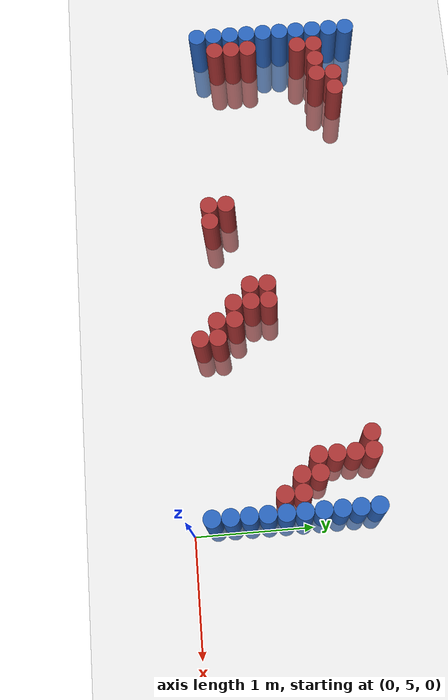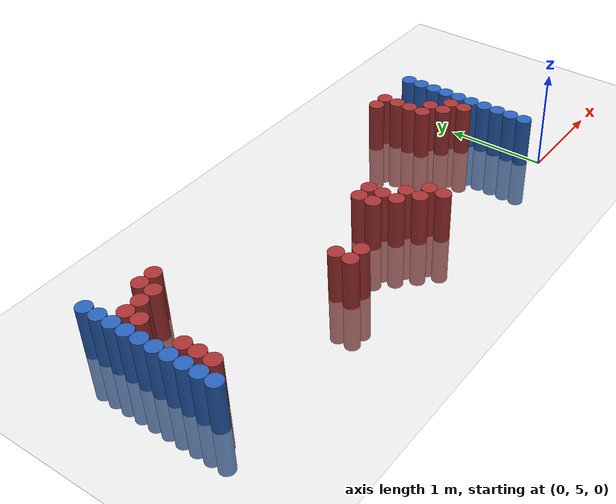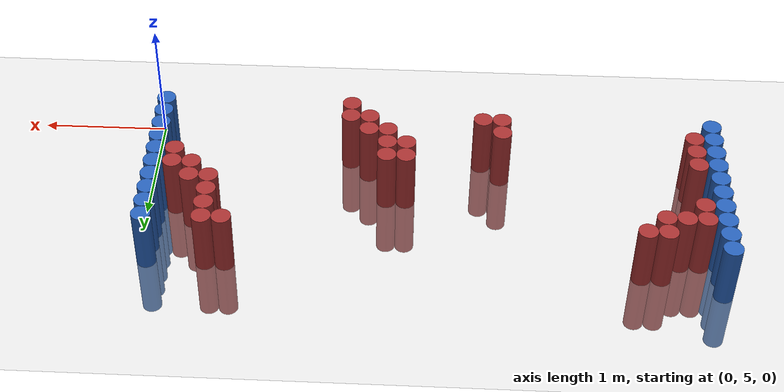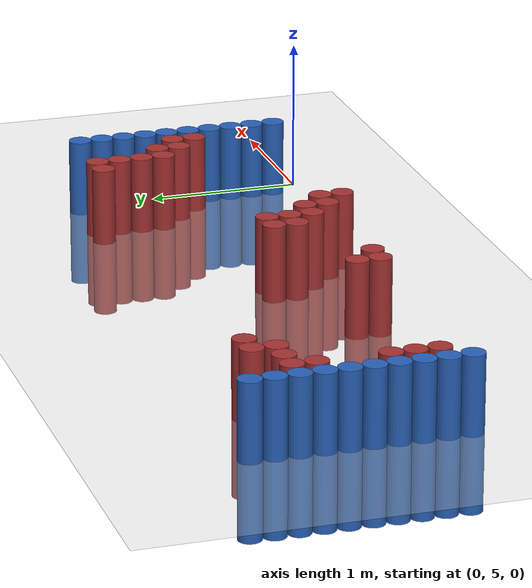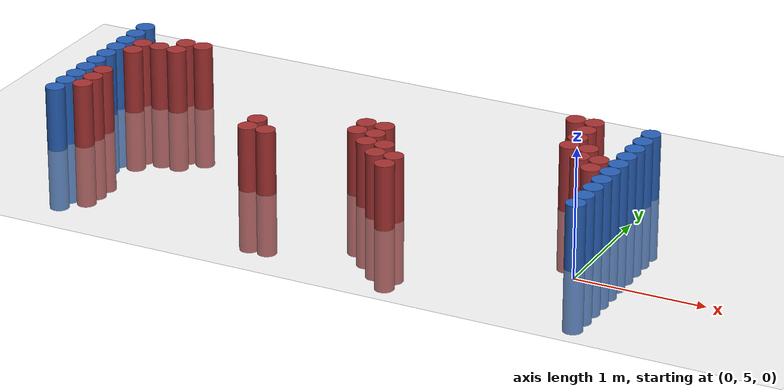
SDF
<sdf version="1.6">
 <world name="default">
  <model name="ground_plane">
   <static>1</static>
   <link name="link">
    <collision name="collision">
     <geometry><plane><normal>0 0 1</normal><size>100 100</size></plane></geometry>
     <surface><friction><ode><mu>100</mu><mu2>50</mu2></ode></friction></surface>
    </collision>
    <visual name="visual">
     <cast_shadows>0</cast_shadows>
     <geometry><plane><normal>0 0 1</normal><size>100 100</size></plane></geometry>
     <material>
      <script><uri>file://media/materials/scripts/gazebo.material</uri><name>Gazebo/Grey</name></script>
     </material>
    </visual>
   </link>
  </model>
  <model name="unit_cylinder_97">
   <static>1</static>
   <pose>-4.425000 5.325000 0.000000 0.000000 0.000000 0.000000</pose>
   <link name="link">
    <inertial>
     <mass>1</mass>
     <inertia><ixx>0.145833</ixx><ixy>0</ixy><ixz>0</ixz><iyy>0.145833</iyy><iyz>0</iyz><izz>0.125</izz></inertia>
    </inertial>
    <collision name="collision">
     <geometry><cylinder><radius>0.075000</radius><length>1</length></cylinder></geometry>
    </collision>
    <visual name="visual">
     <geometry><cylinder><radius>0.075000</radius><length>1</length></cylinder></geometry>
     <material>
      <ambient>0.152000 0.379000 0.720000 1</ambient>
      <diffuse>0.152000 0.379000 0.720000 1</diffuse>
     </material>
     <material>
      <script><name>Gazebo/Grey</name><uri>file://media/materials/scripts/gazebo.material</uri></script>
     </material>
    </visual>
   </link>
  </model>
  <model name="unit_cylinder_98">
   <static>1</static>
   <pose>-4.425000 5.475000 0.000000 0.000000 0.000000 0.000000</pose>
   <link name="link">
    <inertial>
     <mass>1</mass>
     <inertia><ixx>0.145833</ixx><ixy>0</ixy><ixz>0</ixz><iyy>0.145833</iyy><iyz>0</iyz><izz>0.125</izz></inertia>
    </inertial>
    <collision name="collision">
     <geometry><cylinder><radius>0.075000</radius><length>1</length></cylinder></geometry>
    </collision>
    <visual name="visual">
     <geometry><cylinder><radius>0.075000</radius><length>1</length></cylinder></geometry>
     <material>
      <ambient>0.152000 0.379000 0.720000 1</ambient>
      <diffuse>0.152000 0.379000 0.720000 1</diffuse>
     </material>
     <material>
      <script><name>Gazebo/Grey</name><uri>file://media/materials/scripts/gazebo.material</uri></script>
     </material>
    </visual>
   </link>
  </model>
  <model name="unit_cylinder_99">
   <static>1</static>
   <pose>-4.425000 5.625000 0.000000 0.000000 0.000000 0.000000</pose>
   <link name="link">
    <inertial>
     <mass>1</mass>
     <inertia><ixx>0.145833</ixx><ixy>0</ixy><ixz>0</ixz><iyy>0.145833</iyy><iyz>0</iyz><izz>0.125</izz></inertia>
    </inertial>
    <collision name="collision">
     <geometry><cylinder><radius>0.075000</radius><length>1</length></cylinder></geometry>
    </collision>
    <visual name="visual">
     <geometry><cylinder><radius>0.075000</radius><length>1</length></cylinder></geometry>
     <material>
      <ambient>0.152000 0.379000 0.720000 1</ambient>
      <diffuse>0.152000 0.379000 0.720000 1</diffuse>
     </material>
     <material>
      <script><name>Gazebo/Grey</name><uri>file://media/materials/scripts/gazebo.material</uri></script>
     </material>
    </visual>
   </link>
  </model>
  <model name="unit_cylinder_100">
   <static>1</static>
   <pose>-4.425000 5.775000 0.000000 0.000000 0.000000 0.000000</pose>
   <link name="link">
    <inertial>
     <mass>1</mass>
     <inertia><ixx>0.145833</ixx><ixy>0</ixy><ixz>0</ixz><iyy>0.145833</iyy><iyz>0</iyz><izz>0.125</izz></inertia>
    </inertial>
    <collision name="collision">
     <geometry><cylinder><radius>0.075000</radius><length>1</length></cylinder></geometry>
    </collision>
    <visual name="visual">
     <geometry><cylinder><radius>0.075000</radius><length>1</length></cylinder></geometry>
     <material>
      <ambient>0.152000 0.379000 0.720000 1</ambient>
      <diffuse>0.152000 0.379000 0.720000 1</diffuse>
     </material>
     <material>
      <script><name>Gazebo/Grey</name><uri>file://media/materials/scripts/gazebo.material</uri></script>
     </material>
    </visual>
   </link>
  </model>
  <model name="unit_cylinder_101">
   <static>1</static>
   <pose>-4.425000 5.925000 0.000000 0.000000 0.000000 0.000000</pose>
   <link name="link">
    <inertial>
     <mass>1</mass>
     <inertia><ixx>0.145833</ixx><ixy>0</ixy><ixz>0</ixz><iyy>0.145833</iyy><iyz>0</iyz><izz>0.125</izz></inertia>
    </inertial>
    <collision name="collision">
     <geometry><cylinder><radius>0.075000</radius><length>1</length></cylinder></geometry>
    </collision>
    <visual name="visual">
     <geometry><cylinder><radius>0.075000</radius><length>1</length></cylinder></geometry>
     <material>
      <ambient>0.152000 0.379000 0.720000 1</ambient>
      <diffuse>0.152000 0.379000 0.720000 1</diffuse>
     </material>
     <material>
      <script><name>Gazebo/Grey</name><uri>file://media/materials/scripts/gazebo.material</uri></script>
     </material>
    </visual>
   </link>
  </model>
  <model name="unit_cylinder_102">
   <static>1</static>
   <pose>-4.425000 6.075000 0.000000 0.000000 0.000000 0.000000</pose>
   <link name="link">
    <inertial>
     <mass>1</mass>
     <inertia><ixx>0.145833</ixx><ixy>0</ixy><ixz>0</ixz><iyy>0.145833</iyy><iyz>0</iyz><izz>0.125</izz></inertia>
    </inertial>
    <collision name="collision">
     <geometry><cylinder><radius>0.075000</radius><length>1</length></cylinder></geometry>
    </collision>
    <visual name="visual">
     <geometry><cylinder><radius>0.075000</radius><length>1</length></cylinder></geometry>
     <material>
      <ambient>0.152000 0.379000 0.720000 1</ambient>
      <diffuse>0.152000 0.379000 0.720000 1</diffuse>
     </material>
     <material>
      <script><name>Gazebo/Grey</name><uri>file://media/materials/scripts/gazebo.material</uri></script>
     </material>
    </visual>
   </link>
  </model>
  <model name="unit_cylinder_103">
   <static>1</static>
   <pose>-4.425000 6.225000 0.000000 0.000000 0.000000 0.000000</pose>
   <link name="link">
    <inertial>
     <mass>1</mass>
     <inertia><ixx>0.145833</ixx><ixy>0</ixy><ixz>0</ixz><iyy>0.145833</iyy><iyz>0</iyz><izz>0.125</izz></inertia>
    </inertial>
    <collision name="collision">
     <geometry><cylinder><radius>0.075000</radius><length>1</length></cylinder></geometry>
    </collision>
    <visual name="visual">
     <geometry><cylinder><radius>0.075000</radius><length>1</length></cylinder></geometry>
     <material>
      <ambient>0.152000 0.379000 0.720000 1</ambient>
      <diffuse>0.152000 0.379000 0.720000 1</diffuse>
     </material>
     <material>
      <script><name>Gazebo/Grey</name><uri>file://media/materials/scripts/gazebo.material</uri></script>
     </material>
    </visual>
   </link>
  </model>
  <model name="unit_cylinder_104">
   <static>1</static>
   <pose>-4.425000 6.375000 0.000000 0.000000 0.000000 0.000000</pose>
   <link name="link">
    <inertial>
     <mass>1</mass>
     <inertia><ixx>0.145833</ixx><ixy>0</ixy><ixz>0</ixz><iyy>0.145833</iyy><iyz>0</iyz><izz>0.125</izz></inertia>
    </inertial>
    <collision name="collision">
     <geometry><cylinder><radius>0.075000</radius><length>1</length></cylinder></geometry>
    </collision>
    <visual name="visual">
     <geometry><cylinder><radius>0.075000</radius><length>1</length></cylinder></geometry>
     <material>
      <ambient>0.152000 0.379000 0.720000 1</ambient>
      <diffuse>0.152000 0.379000 0.720000 1</diffuse>
     </material>
     <material>
      <script><name>Gazebo/Grey</name><uri>file://media/materials/scripts/gazebo.material</uri></script>
     </material>
    </visual>
   </link>
  </model>
  <model name="unit_cylinder_105">
   <static>1</static>
   <pose>-4.425000 6.525000 0.000000 0.000000 0.000000 0.000000</pose>
   <link name="link">
    <inertial>
     <mass>1</mass>
     <inertia><ixx>0.145833</ixx><ixy>0</ixy><ixz>0</ixz><iyy>0.145833</iyy><iyz>0</iyz><izz>0.125</izz></inertia>
    </inertial>
    <collision name="collision">
     <geometry><cylinder><radius>0.075000</radius><length>1</length></cylinder></geometry>
    </collision>
    <visual name="visual">
     <geometry><cylinder><radius>0.075000</radius><length>1</length></cylinder></geometry>
     <material>
      <ambient>0.152000 0.379000 0.720000 1</ambient>
      <diffuse>0.152000 0.379000 0.720000 1</diffuse>
     </material>
     <material>
      <script><name>Gazebo/Grey</name><uri>file://media/materials/scripts/gazebo.material</uri></script>
     </material>
    </visual>
   </link>
  </model>
  <model name="unit_cylinder_106">
   <static>1</static>
   <pose>-4.425000 6.675000 0.000000 0.000000 0.000000 0.000000</pose>
   <link name="link">
    <inertial>
     <mass>1</mass>
     <inertia><ixx>0.145833</ixx><ixy>0</ixy><ixz>0</ixz><iyy>0.145833</iyy><iyz>0</iyz><izz>0.125</izz></inertia>
    </inertial>
    <collision name="collision">
     <geometry><cylinder><radius>0.075000</radius><length>1</length></cylinder></geometry>
    </collision>
    <visual name="visual">
     <geometry><cylinder><radius>0.075000</radius><length>1</length></cylinder></geometry>
     <material>
      <ambient>0.152000 0.379000 0.720000 1</ambient>
      <diffuse>0.152000 0.379000 0.720000 1</diffuse>
     </material>
     <material>
      <script><name>Gazebo/Grey</name><uri>file://media/materials/scripts/gazebo.material</uri></script>
     </material>
    </visual>
   </link>
  </model>
  <model name="unit_cylinder_126">
   <static>1</static>
   <pose>-4.275000 5.475000 0.000000 0.000000 0.000000 0.000000</pose>
   <link name="link">
    <inertial>
     <mass>1</mass>
     <inertia><ixx>0.145833</ixx><ixy>0</ixy><ixz>0</ixz><iyy>0.145833</iyy><iyz>0</iyz><izz>0.125</izz></inertia>
    </inertial>
    <collision name="collision">
     <geometry><cylinder><radius>0.075000</radius><length>1</length></cylinder></geometry>
    </collision>
    <visual name="visual">
     <geometry><cylinder><radius>0.075000</radius><length>1</length></cylinder></geometry>
     <material>
      <ambient>0.648000 0.192000 0.192000 1</ambient>
      <diffuse>0.648000 0.192000 0.192000 1</diffuse>
     </material>
     <material>
      <script><name>Gazebo/Grey</name><uri>file://media/materials/scripts/gazebo.material</uri></script>
     </material>
    </visual>
   </link>
  </model>
  <model name="unit_cylinder_127">
   <static>1</static>
   <pose>-4.275000 5.625000 0.000000 0.000000 0.000000 0.000000</pose>
   <link name="link">
    <inertial>
     <mass>1</mass>
     <inertia><ixx>0.145833</ixx><ixy>0</ixy><ixz>0</ixz><iyy>0.145833</iyy><iyz>0</iyz><izz>0.125</izz></inertia>
    </inertial>
    <collision name="collision">
     <geometry><cylinder><radius>0.075000</radius><length>1</length></cylinder></geometry>
    </collision>
    <visual name="visual">
     <geometry><cylinder><radius>0.075000</radius><length>1</length></cylinder></geometry>
     <material>
      <ambient>0.648000 0.192000 0.192000 1</ambient>
      <diffuse>0.648000 0.192000 0.192000 1</diffuse>
     </material>
     <material>
      <script><name>Gazebo/Grey</name><uri>file://media/materials/scripts/gazebo.material</uri></script>
     </material>
    </visual>
   </link>
  </model>
  <model name="unit_cylinder_128">
   <static>1</static>
   <pose>-4.275000 5.775000 0.000000 0.000000 0.000000 0.000000</pose>
   <link name="link">
    <inertial>
     <mass>1</mass>
     <inertia><ixx>0.145833</ixx><ixy>0</ixy><ixz>0</ixz><iyy>0.145833</iyy><iyz>0</iyz><izz>0.125</izz></inertia>
    </inertial>
    <collision name="collision">
     <geometry><cylinder><radius>0.075000</radius><length>1</length></cylinder></geometry>
    </collision>
    <visual name="visual">
     <geometry><cylinder><radius>0.075000</radius><length>1</length></cylinder></geometry>
     <material>
      <ambient>0.648000 0.192000 0.192000 1</ambient>
      <diffuse>0.648000 0.192000 0.192000 1</diffuse>
     </material>
     <material>
      <script><name>Gazebo/Grey</name><uri>file://media/materials/scripts/gazebo.material</uri></script>
     </material>
    </visual>
   </link>
  </model>
  <model name="unit_cylinder_129">
   <static>1</static>
   <pose>-4.275000 6.225000 0.000000 0.000000 0.000000 0.000000</pose>
   <link name="link">
    <inertial>
     <mass>1</mass>
     <inertia><ixx>0.145833</ixx><ixy>0</ixy><ixz>0</ixz><iyy>0.145833</iyy><iyz>0</iyz><izz>0.125</izz></inertia>
    </inertial>
    <collision name="collision">
     <geometry><cylinder><radius>0.075000</radius><length>1</length></cylinder></geometry>
    </collision>
    <visual name="visual">
     <geometry><cylinder><radius>0.075000</radius><length>1</length></cylinder></geometry>
     <material>
      <ambient>0.648000 0.192000 0.192000 1</ambient>
      <diffuse>0.648000 0.192000 0.192000 1</diffuse>
     </material>
     <material>
      <script><name>Gazebo/Grey</name><uri>file://media/materials/scripts/gazebo.material</uri></script>
     </material>
    </visual>
   </link>
  </model>
  <model name="unit_cylinder_130">
   <static>1</static>
   <pose>-4.275000 6.375000 0.000000 0.000000 0.000000 0.000000</pose>
   <link name="link">
    <inertial>
     <mass>1</mass>
     <inertia><ixx>0.145833</ixx><ixy>0</ixy><ixz>0</ixz><iyy>0.145833</iyy><iyz>0</iyz><izz>0.125</izz></inertia>
    </inertial>
    <collision name="collision">
     <geometry><cylinder><radius>0.075000</radius><length>1</length></cylinder></geometry>
    </collision>
    <visual name="visual">
     <geometry><cylinder><radius>0.075000</radius><length>1</length></cylinder></geometry>
     <material>
      <ambient>0.648000 0.192000 0.192000 1</ambient>
      <diffuse>0.648000 0.192000 0.192000 1</diffuse>
     </material>
     <material>
      <script><name>Gazebo/Grey</name><uri>file://media/materials/scripts/gazebo.material</uri></script>
     </material>
    </visual>
   </link>
  </model>
  <model name="unit_cylinder_146">
   <static>1</static>
   <pose>-4.125000 6.375000 0.000000 0.000000 0.000000 0.000000</pose>
   <link name="link">
    <inertial>
     <mass>1</mass>
     <inertia><ixx>0.145833</ixx><ixy>0</ixy><ixz>0</ixz><iyy>0.145833</iyy><iyz>0</iyz><izz>0.125</izz></inertia>
    </inertial>
    <collision name="collision">
     <geometry><cylinder><radius>0.075000</radius><length>1</length></cylinder></geometry>
    </collision>
    <visual name="visual">
     <geometry><cylinder><radius>0.075000</radius><length>1</length></cylinder></geometry>
     <material>
      <ambient>0.648000 0.192000 0.192000 1</ambient>
      <diffuse>0.648000 0.192000 0.192000 1</diffuse>
     </material>
     <material>
      <script><name>Gazebo/Grey</name><uri>file://media/materials/scripts/gazebo.material</uri></script>
     </material>
    </visual>
   </link>
  </model>
  <model name="unit_cylinder_154">
   <static>1</static>
   <pose>-3.975000 6.375000 0.000000 0.000000 0.000000 0.000000</pose>
   <link name="link">
    <inertial>
     <mass>1</mass>
     <inertia><ixx>0.145833</ixx><ixy>0</ixy><ixz>0</ixz><iyy>0.145833</iyy><iyz>0</iyz><izz>0.125</izz></inertia>
    </inertial>
    <collision name="collision">
     <geometry><cylinder><radius>0.075000</radius><length>1</length></cylinder></geometry>
    </collision>
    <visual name="visual">
     <geometry><cylinder><radius>0.075000</radius><length>1</length></cylinder></geometry>
     <material>
      <ambient>0.648000 0.192000 0.192000 1</ambient>
      <diffuse>0.648000 0.192000 0.192000 1</diffuse>
     </material>
     <material>
      <script><name>Gazebo/Grey</name><uri>file://media/materials/scripts/gazebo.material</uri></script>
     </material>
    </visual>
   </link>
  </model>
  <model name="unit_cylinder_155">
   <static>1</static>
   <pose>-3.975000 6.525000 0.000000 0.000000 0.000000 0.000000</pose>
   <link name="link">
    <inertial>
     <mass>1</mass>
     <inertia><ixx>0.145833</ixx><ixy>0</ixy><ixz>0</ixz><iyy>0.145833</iyy><iyz>0</iyz><izz>0.125</izz></inertia>
    </inertial>
    <collision name="collision">
     <geometry><cylinder><radius>0.075000</radius><length>1</length></cylinder></geometry>
    </collision>
    <visual name="visual">
     <geometry><cylinder><radius>0.075000</radius><length>1</length></cylinder></geometry>
     <material>
      <ambient>0.648000 0.192000 0.192000 1</ambient>
      <diffuse>0.648000 0.192000 0.192000 1</diffuse>
     </material>
     <material>
      <script><name>Gazebo/Grey</name><uri>file://media/materials/scripts/gazebo.material</uri></script>
     </material>
    </visual>
   </link>
  </model>
  <model name="unit_cylinder_158">
   <static>1</static>
   <pose>-3.825000 6.525000 0.000000 0.000000 0.000000 0.000000</pose>
   <link name="link">
    <inertial>
     <mass>1</mass>
     <inertia><ixx>0.145833</ixx><ixy>0</ixy><ixz>0</ixz><iyy>0.145833</iyy><iyz>0</iyz><izz>0.125</izz></inertia>
    </inertial>
    <collision name="collision">
     <geometry><cylinder><radius>0.075000</radius><length>1</length></cylinder></geometry>
    </collision>
    <visual name="visual">
     <geometry><cylinder><radius>0.075000</radius><length>1</length></cylinder></geometry>
     <material>
      <ambient>0.648000 0.192000 0.192000 1</ambient>
      <diffuse>0.648000 0.192000 0.192000 1</diffuse>
     </material>
     <material>
      <script><name>Gazebo/Grey</name><uri>file://media/materials/scripts/gazebo.material</uri></script>
     </material>
    </visual>
   </link>
  </model>
  <model name="unit_cylinder_198">
   <static>1</static>
   <pose>-2.775000 5.325000 0.000000 0.000000 0.000000 0.000000</pose>
   <link name="link">
    <inertial>
     <mass>1</mass>
     <inertia><ixx>0.145833</ixx><ixy>0</ixy><ixz>0</ixz><iyy>0.145833</iyy><iyz>0</iyz><izz>0.125</izz></inertia>
    </inertial>
    <collision name="collision">
     <geometry><cylinder><radius>0.075000</radius><length>1</length></cylinder></geometry>
    </collision>
    <visual name="visual">
     <geometry><cylinder><radius>0.075000</radius><length>1</length></cylinder></geometry>
     <material>
      <ambient>0.648000 0.192000 0.192000 1</ambient>
      <diffuse>0.648000 0.192000 0.192000 1</diffuse>
     </material>
     <material>
      <script><name>Gazebo/Grey</name><uri>file://media/materials/scripts/gazebo.material</uri></script>
     </material>
    </visual>
   </link>
  </model>
  <model name="unit_cylinder_199">
   <static>1</static>
   <pose>-2.775000 5.475000 0.000000 0.000000 0.000000 0.000000</pose>
   <link name="link">
    <inertial>
     <mass>1</mass>
     <inertia><ixx>0.145833</ixx><ixy>0</ixy><ixz>0</ixz><iyy>0.145833</iyy><iyz>0</iyz><izz>0.125</izz></inertia>
    </inertial>
    <collision name="collision">
     <geometry><cylinder><radius>0.075000</radius><length>1</length></cylinder></geometry>
    </collision>
    <visual name="visual">
     <geometry><cylinder><radius>0.075000</radius><length>1</length></cylinder></geometry>
     <material>
      <ambient>0.648000 0.192000 0.192000 1</ambient>
      <diffuse>0.648000 0.192000 0.192000 1</diffuse>
     </material>
     <material>
      <script><name>Gazebo/Grey</name><uri>file://media/materials/scripts/gazebo.material</uri></script>
     </material>
    </visual>
   </link>
  </model>
  <model name="unit_cylinder_208">
   <static>1</static>
   <pose>-2.625000 5.325000 0.000000 0.000000 0.000000 0.000000</pose>
   <link name="link">
    <inertial>
     <mass>1</mass>
     <inertia><ixx>0.145833</ixx><ixy>0</ixy><ixz>0</ixz><iyy>0.145833</iyy><iyz>0</iyz><izz>0.125</izz></inertia>
    </inertial>
    <collision name="collision">
     <geometry><cylinder><radius>0.075000</radius><length>1</length></cylinder></geometry>
    </collision>
    <visual name="visual">
     <geometry><cylinder><radius>0.075000</radius><length>1</length></cylinder></geometry>
     <material>
      <ambient>0.648000 0.192000 0.192000 1</ambient>
      <diffuse>0.648000 0.192000 0.192000 1</diffuse>
     </material>
     <material>
      <script><name>Gazebo/Grey</name><uri>file://media/materials/scripts/gazebo.material</uri></script>
     </material>
    </visual>
   </link>
  </model>
  <model name="unit_cylinder_222">
   <static>1</static>
   <pose>-2.025000 5.625000 0.000000 0.000000 0.000000 0.000000</pose>
   <link name="link">
    <inertial>
     <mass>1</mass>
     <inertia><ixx>0.145833</ixx><ixy>0</ixy><ixz>0</ixz><iyy>0.145833</iyy><iyz>0</iyz><izz>0.125</izz></inertia>
    </inertial>
    <collision name="collision">
     <geometry><cylinder><radius>0.075000</radius><length>1</length></cylinder></geometry>
    </collision>
    <visual name="visual">
     <geometry><cylinder><radius>0.075000</radius><length>1</length></cylinder></geometry>
     <material>
      <ambient>0.648000 0.192000 0.192000 1</ambient>
      <diffuse>0.648000 0.192000 0.192000 1</diffuse>
     </material>
     <material>
      <script><name>Gazebo/Grey</name><uri>file://media/materials/scripts/gazebo.material</uri></script>
     </material>
    </visual>
   </link>
  </model>
  <model name="unit_cylinder_223">
   <static>1</static>
   <pose>-2.025000 5.775000 0.000000 0.000000 0.000000 0.000000</pose>
   <link name="link">
    <inertial>
     <mass>1</mass>
     <inertia><ixx>0.145833</ixx><ixy>0</ixy><ixz>0</ixz><iyy>0.145833</iyy><iyz>0</iyz><izz>0.125</izz></inertia>
    </inertial>
    <collision name="collision">
     <geometry><cylinder><radius>0.075000</radius><length>1</length></cylinder></geometry>
    </collision>
    <visual name="visual">
     <geometry><cylinder><radius>0.075000</radius><length>1</length></cylinder></geometry>
     <material>
      <ambient>0.648000 0.192000 0.192000 1</ambient>
      <diffuse>0.648000 0.192000 0.192000 1</diffuse>
     </material>
     <material>
      <script><name>Gazebo/Grey</name><uri>file://media/materials/scripts/gazebo.material</uri></script>
     </material>
    </visual>
   </link>
  </model>
  <model name="unit_cylinder_226">
   <static>1</static>
   <pose>-1.875000 5.475000 0.000000 0.000000 0.000000 0.000000</pose>
   <link name="link">
    <inertial>
     <mass>1</mass>
     <inertia><ixx>0.145833</ixx><ixy>0</ixy><ixz>0</ixz><iyy>0.145833</iyy><iyz>0</iyz><izz>0.125</izz></inertia>
    </inertial>
    <collision name="collision">
     <geometry><cylinder><radius>0.075000</radius><length>1</length></cylinder></geometry>
    </collision>
    <visual name="visual">
     <geometry><cylinder><radius>0.075000</radius><length>1</length></cylinder></geometry>
     <material>
      <ambient>0.648000 0.192000 0.192000 1</ambient>
      <diffuse>0.648000 0.192000 0.192000 1</diffuse>
     </material>
     <material>
      <script><name>Gazebo/Grey</name><uri>file://media/materials/scripts/gazebo.material</uri></script>
     </material>
    </visual>
   </link>
  </model>
  <model name="unit_cylinder_227">
   <static>1</static>
   <pose>-1.875000 5.625000 0.000000 0.000000 0.000000 0.000000</pose>
   <link name="link">
    <inertial>
     <mass>1</mass>
     <inertia><ixx>0.145833</ixx><ixy>0</ixy><ixz>0</ixz><iyy>0.145833</iyy><iyz>0</iyz><izz>0.125</izz></inertia>
    </inertial>
    <collision name="collision">
     <geometry><cylinder><radius>0.075000</radius><length>1</length></cylinder></geometry>
    </collision>
    <visual name="visual">
     <geometry><cylinder><radius>0.075000</radius><length>1</length></cylinder></geometry>
     <material>
      <ambient>0.648000 0.192000 0.192000 1</ambient>
      <diffuse>0.648000 0.192000 0.192000 1</diffuse>
     </material>
     <material>
      <script><name>Gazebo/Grey</name><uri>file://media/materials/scripts/gazebo.material</uri></script>
     </material>
    </visual>
   </link>
  </model>
  <model name="unit_cylinder_228">
   <static>1</static>
   <pose>-1.875000 5.775000 0.000000 0.000000 0.000000 0.000000</pose>
   <link name="link">
    <inertial>
     <mass>1</mass>
     <inertia><ixx>0.145833</ixx><ixy>0</ixy><ixz>0</ixz><iyy>0.145833</iyy><iyz>0</iyz><izz>0.125</izz></inertia>
    </inertial>
    <collision name="collision">
     <geometry><cylinder><radius>0.075000</radius><length>1</length></cylinder></geometry>
    </collision>
    <visual name="visual">
     <geometry><cylinder><radius>0.075000</radius><length>1</length></cylinder></geometry>
     <material>
      <ambient>0.648000 0.192000 0.192000 1</ambient>
      <diffuse>0.648000 0.192000 0.192000 1</diffuse>
     </material>
     <material>
      <script><name>Gazebo/Grey</name><uri>file://media/materials/scripts/gazebo.material</uri></script>
     </material>
    </visual>
   </link>
  </model>
  <model name="unit_cylinder_230">
   <static>1</static>
   <pose>-1.725000 5.325000 0.000000 0.000000 0.000000 0.000000</pose>
   <link name="link">
    <inertial>
     <mass>1</mass>
     <inertia><ixx>0.145833</ixx><ixy>0</ixy><ixz>0</ixz><iyy>0.145833</iyy><iyz>0</iyz><izz>0.125</izz></inertia>
    </inertial>
    <collision name="collision">
     <geometry><cylinder><radius>0.075000</radius><length>1</length></cylinder></geometry>
    </collision>
    <visual name="visual">
     <geometry><cylinder><radius>0.075000</radius><length>1</length></cylinder></geometry>
     <material>
      <ambient>0.648000 0.192000 0.192000 1</ambient>
      <diffuse>0.648000 0.192000 0.192000 1</diffuse>
     </material>
     <material>
      <script><name>Gazebo/Grey</name><uri>file://media/materials/scripts/gazebo.material</uri></script>
     </material>
    </visual>
   </link>
  </model>
  <model name="unit_cylinder_231">
   <static>1</static>
   <pose>-1.725000 5.475000 0.000000 0.000000 0.000000 0.000000</pose>
   <link name="link">
    <inertial>
     <mass>1</mass>
     <inertia><ixx>0.145833</ixx><ixy>0</ixy><ixz>0</ixz><iyy>0.145833</iyy><iyz>0</iyz><izz>0.125</izz></inertia>
    </inertial>
    <collision name="collision">
     <geometry><cylinder><radius>0.075000</radius><length>1</length></cylinder></geometry>
    </collision>
    <visual name="visual">
     <geometry><cylinder><radius>0.075000</radius><length>1</length></cylinder></geometry>
     <material>
      <ambient>0.648000 0.192000 0.192000 1</ambient>
      <diffuse>0.648000 0.192000 0.192000 1</diffuse>
     </material>
     <material>
      <script><name>Gazebo/Grey</name><uri>file://media/materials/scripts/gazebo.material</uri></script>
     </material>
    </visual>
   </link>
  </model>
  <model name="unit_cylinder_234">
   <static>1</static>
   <pose>-1.575000 5.175000 0.000000 0.000000 0.000000 0.000000</pose>
   <link name="link">
    <inertial>
     <mass>1</mass>
     <inertia><ixx>0.145833</ixx><ixy>0</ixy><ixz>0</ixz><iyy>0.145833</iyy><iyz>0</iyz><izz>0.125</izz></inertia>
    </inertial>
    <collision name="collision">
     <geometry><cylinder><radius>0.075000</radius><length>1</length></cylinder></geometry>
    </collision>
    <visual name="visual">
     <geometry><cylinder><radius>0.075000</radius><length>1</length></cylinder></geometry>
     <material>
      <ambient>0.648000 0.192000 0.192000 1</ambient>
      <diffuse>0.648000 0.192000 0.192000 1</diffuse>
     </material>
     <material>
      <script><name>Gazebo/Grey</name><uri>file://media/materials/scripts/gazebo.material</uri></script>
     </material>
    </visual>
   </link>
  </model>
  <model name="unit_cylinder_235">
   <static>1</static>
   <pose>-1.575000 5.325000 0.000000 0.000000 0.000000 0.000000</pose>
   <link name="link">
    <inertial>
     <mass>1</mass>
     <inertia><ixx>0.145833</ixx><ixy>0</ixy><ixz>0</ixz><iyy>0.145833</iyy><iyz>0</iyz><izz>0.125</izz></inertia>
    </inertial>
    <collision name="collision">
     <geometry><cylinder><radius>0.075000</radius><length>1</length></cylinder></geometry>
    </collision>
    <visual name="visual">
     <geometry><cylinder><radius>0.075000</radius><length>1</length></cylinder></geometry>
     <material>
      <ambient>0.648000 0.192000 0.192000 1</ambient>
      <diffuse>0.648000 0.192000 0.192000 1</diffuse>
     </material>
     <material>
      <script><name>Gazebo/Grey</name><uri>file://media/materials/scripts/gazebo.material</uri></script>
     </material>
    </visual>
   </link>
  </model>
  <model name="unit_cylinder_242">
   <static>1</static>
   <pose>-0.675000 6.525000 0.000000 0.000000 0.000000 0.000000</pose>
   <link name="link">
    <inertial>
     <mass>1</mass>
     <inertia><ixx>0.145833</ixx><ixy>0</ixy><ixz>0</ixz><iyy>0.145833</iyy><iyz>0</iyz><izz>0.125</izz></inertia>
    </inertial>
    <collision name="collision">
     <geometry><cylinder><radius>0.075000</radius><length>1</length></cylinder></geometry>
    </collision>
    <visual name="visual">
     <geometry><cylinder><radius>0.075000</radius><length>1</length></cylinder></geometry>
     <material>
      <ambient>0.648000 0.192000 0.192000 1</ambient>
      <diffuse>0.648000 0.192000 0.192000 1</diffuse>
     </material>
     <material>
      <script><name>Gazebo/Grey</name><uri>file://media/materials/scripts/gazebo.material</uri></script>
     </material>
    </visual>
   </link>
  </model>
  <model name="unit_cylinder_247">
   <static>1</static>
   <pose>-0.525000 6.075000 0.000000 0.000000 0.000000 0.000000</pose>
   <link name="link">
    <inertial>
     <mass>1</mass>
     <inertia><ixx>0.145833</ixx><ixy>0</ixy><ixz>0</ixz><iyy>0.145833</iyy><iyz>0</iyz><izz>0.125</izz></inertia>
    </inertial>
    <collision name="collision">
     <geometry><cylinder><radius>0.075000</radius><length>1</length></cylinder></geometry>
    </collision>
    <visual name="visual">
     <geometry><cylinder><radius>0.075000</radius><length>1</length></cylinder></geometry>
     <material>
      <ambient>0.648000 0.192000 0.192000 1</ambient>
      <diffuse>0.648000 0.192000 0.192000 1</diffuse>
     </material>
     <material>
      <script><name>Gazebo/Grey</name><uri>file://media/materials/scripts/gazebo.material</uri></script>
     </material>
    </visual>
   </link>
  </model>
  <model name="unit_cylinder_248">
   <static>1</static>
   <pose>-0.525000 6.225000 0.000000 0.000000 0.000000 0.000000</pose>
   <link name="link">
    <inertial>
     <mass>1</mass>
     <inertia><ixx>0.145833</ixx><ixy>0</ixy><ixz>0</ixz><iyy>0.145833</iyy><iyz>0</iyz><izz>0.125</izz></inertia>
    </inertial>
    <collision name="collision">
     <geometry><cylinder><radius>0.075000</radius><length>1</length></cylinder></geometry>
    </collision>
    <visual name="visual">
     <geometry><cylinder><radius>0.075000</radius><length>1</length></cylinder></geometry>
     <material>
      <ambient>0.648000 0.192000 0.192000 1</ambient>
      <diffuse>0.648000 0.192000 0.192000 1</diffuse>
     </material>
     <material>
      <script><name>Gazebo/Grey</name><uri>file://media/materials/scripts/gazebo.material</uri></script>
     </material>
    </visual>
   </link>
  </model>
  <model name="unit_cylinder_249">
   <static>1</static>
   <pose>-0.525000 6.375000 0.000000 0.000000 0.000000 0.000000</pose>
   <link name="link">
    <inertial>
     <mass>1</mass>
     <inertia><ixx>0.145833</ixx><ixy>0</ixy><ixz>0</ixz><iyy>0.145833</iyy><iyz>0</iyz><izz>0.125</izz></inertia>
    </inertial>
    <collision name="collision">
     <geometry><cylinder><radius>0.075000</radius><length>1</length></cylinder></geometry>
    </collision>
    <visual name="visual">
     <geometry><cylinder><radius>0.075000</radius><length>1</length></cylinder></geometry>
     <material>
      <ambient>0.648000 0.192000 0.192000 1</ambient>
      <diffuse>0.648000 0.192000 0.192000 1</diffuse>
     </material>
     <material>
      <script><name>Gazebo/Grey</name><uri>file://media/materials/scripts/gazebo.material</uri></script>
     </material>
    </visual>
   </link>
  </model>
  <model name="unit_cylinder_250">
   <static>1</static>
   <pose>-0.525000 6.525000 0.000000 0.000000 0.000000 0.000000</pose>
   <link name="link">
    <inertial>
     <mass>1</mass>
     <inertia><ixx>0.145833</ixx><ixy>0</ixy><ixz>0</ixz><iyy>0.145833</iyy><iyz>0</iyz><izz>0.125</izz></inertia>
    </inertial>
    <collision name="collision">
     <geometry><cylinder><radius>0.075000</radius><length>1</length></cylinder></geometry>
    </collision>
    <visual name="visual">
     <geometry><cylinder><radius>0.075000</radius><length>1</length></cylinder></geometry>
     <material>
      <ambient>0.648000 0.192000 0.192000 1</ambient>
      <diffuse>0.648000 0.192000 0.192000 1</diffuse>
     </material>
     <material>
      <script><name>Gazebo/Grey</name><uri>file://media/materials/scripts/gazebo.material</uri></script>
     </material>
    </visual>
   </link>
  </model>
  <model name="unit_cylinder_256">
   <static>1</static>
   <pose>-0.375000 5.925000 0.000000 0.000000 0.000000 0.000000</pose>
   <link name="link">
    <inertial>
     <mass>1</mass>
     <inertia><ixx>0.145833</ixx><ixy>0</ixy><ixz>0</ixz><iyy>0.145833</iyy><iyz>0</iyz><izz>0.125</izz></inertia>
    </inertial>
    <collision name="collision">
     <geometry><cylinder><radius>0.075000</radius><length>1</length></cylinder></geometry>
    </collision>
    <visual name="visual">
     <geometry><cylinder><radius>0.075000</radius><length>1</length></cylinder></geometry>
     <material>
      <ambient>0.648000 0.192000 0.192000 1</ambient>
      <diffuse>0.648000 0.192000 0.192000 1</diffuse>
     </material>
     <material>
      <script><name>Gazebo/Grey</name><uri>file://media/materials/scripts/gazebo.material</uri></script>
     </material>
    </visual>
   </link>
  </model>
  <model name="unit_cylinder_257">
   <static>1</static>
   <pose>-0.375000 6.075000 0.000000 0.000000 0.000000 0.000000</pose>
   <link name="link">
    <inertial>
     <mass>1</mass>
     <inertia><ixx>0.145833</ixx><ixy>0</ixy><ixz>0</ixz><iyy>0.145833</iyy><iyz>0</iyz><izz>0.125</izz></inertia>
    </inertial>
    <collision name="collision">
     <geometry><cylinder><radius>0.075000</radius><length>1</length></cylinder></geometry>
    </collision>
    <visual name="visual">
     <geometry><cylinder><radius>0.075000</radius><length>1</length></cylinder></geometry>
     <material>
      <ambient>0.648000 0.192000 0.192000 1</ambient>
      <diffuse>0.648000 0.192000 0.192000 1</diffuse>
     </material>
     <material>
      <script><name>Gazebo/Grey</name><uri>file://media/materials/scripts/gazebo.material</uri></script>
     </material>
    </visual>
   </link>
  </model>
  <model name="unit_cylinder_262">
   <static>1</static>
   <pose>-0.225000 5.775000 0.000000 0.000000 0.000000 0.000000</pose>
   <link name="link">
    <inertial>
     <mass>1</mass>
     <inertia><ixx>0.145833</ixx><ixy>0</ixy><ixz>0</ixz><iyy>0.145833</iyy><iyz>0</iyz><izz>0.125</izz></inertia>
    </inertial>
    <collision name="collision">
     <geometry><cylinder><radius>0.075000</radius><length>1</length></cylinder></geometry>
    </collision>
    <visual name="visual">
     <geometry><cylinder><radius>0.075000</radius><length>1</length></cylinder></geometry>
     <material>
      <ambient>0.648000 0.192000 0.192000 1</ambient>
      <diffuse>0.648000 0.192000 0.192000 1</diffuse>
     </material>
     <material>
      <script><name>Gazebo/Grey</name><uri>file://media/materials/scripts/gazebo.material</uri></script>
     </material>
    </visual>
   </link>
  </model>
  <model name="unit_cylinder_263">
   <static>1</static>
   <pose>-0.225000 5.925000 0.000000 0.000000 0.000000 0.000000</pose>
   <link name="link">
    <inertial>
     <mass>1</mass>
     <inertia><ixx>0.145833</ixx><ixy>0</ixy><ixz>0</ixz><iyy>0.145833</iyy><iyz>0</iyz><izz>0.125</izz></inertia>
    </inertial>
    <collision name="collision">
     <geometry><cylinder><radius>0.075000</radius><length>1</length></cylinder></geometry>
    </collision>
    <visual name="visual">
     <geometry><cylinder><radius>0.075000</radius><length>1</length></cylinder></geometry>
     <material>
      <ambient>0.648000 0.192000 0.192000 1</ambient>
      <diffuse>0.648000 0.192000 0.192000 1</diffuse>
     </material>
     <material>
      <script><name>Gazebo/Grey</name><uri>file://media/materials/scripts/gazebo.material</uri></script>
     </material>
    </visual>
   </link>
  </model>
  <model name="unit_cylinder_271">
   <static>1</static>
   <pose>-0.075000 5.175000 0.000000 0.000000 0.000000 0.000000</pose>
   <link name="link">
    <inertial>
     <mass>1</mass>
     <inertia><ixx>0.145833</ixx><ixy>0</ixy><ixz>0</ixz><iyy>0.145833</iyy><iyz>0</iyz><izz>0.125</izz></inertia>
    </inertial>
    <collision name="collision">
     <geometry><cylinder><radius>0.075000</radius><length>1</length></cylinder></geometry>
    </collision>
    <visual name="visual">
     <geometry><cylinder><radius>0.075000</radius><length>1</length></cylinder></geometry>
     <material>
      <ambient>0.152000 0.379000 0.720000 1</ambient>
      <diffuse>0.152000 0.379000 0.720000 1</diffuse>
     </material>
     <material>
      <script><name>Gazebo/Grey</name><uri>file://media/materials/scripts/gazebo.material</uri></script>
     </material>
    </visual>
   </link>
  </model>
  <model name="unit_cylinder_272">
   <static>1</static>
   <pose>-0.075000 5.325000 0.000000 0.000000 0.000000 0.000000</pose>
   <link name="link">
    <inertial>
     <mass>1</mass>
     <inertia><ixx>0.145833</ixx><ixy>0</ixy><ixz>0</ixz><iyy>0.145833</iyy><iyz>0</iyz><izz>0.125</izz></inertia>
    </inertial>
    <collision name="collision">
     <geometry><cylinder><radius>0.075000</radius><length>1</length></cylinder></geometry>
    </collision>
    <visual name="visual">
     <geometry><cylinder><radius>0.075000</radius><length>1</length></cylinder></geometry>
     <material>
      <ambient>0.152000 0.379000 0.720000 1</ambient>
      <diffuse>0.152000 0.379000 0.720000 1</diffuse>
     </material>
     <material>
      <script><name>Gazebo/Grey</name><uri>file://media/materials/scripts/gazebo.material</uri></script>
     </material>
    </visual>
   </link>
  </model>
  <model name="unit_cylinder_273">
   <static>1</static>
   <pose>-0.075000 5.475000 0.000000 0.000000 0.000000 0.000000</pose>
   <link name="link">
    <inertial>
     <mass>1</mass>
     <inertia><ixx>0.145833</ixx><ixy>0</ixy><ixz>0</ixz><iyy>0.145833</iyy><iyz>0</iyz><izz>0.125</izz></inertia>
    </inertial>
    <collision name="collision">
     <geometry><cylinder><radius>0.075000</radius><length>1</length></cylinder></geometry>
    </collision>
    <visual name="visual">
     <geometry><cylinder><radius>0.075000</radius><length>1</length></cylinder></geometry>
     <material>
      <ambient>0.152000 0.379000 0.720000 1</ambient>
      <diffuse>0.152000 0.379000 0.720000 1</diffuse>
     </material>
     <material>
      <script><name>Gazebo/Grey</name><uri>file://media/materials/scripts/gazebo.material</uri></script>
     </material>
    </visual>
   </link>
  </model>
  <model name="unit_cylinder_274">
   <static>1</static>
   <pose>-0.075000 5.625000 0.000000 0.000000 0.000000 0.000000</pose>
   <link name="link">
    <inertial>
     <mass>1</mass>
     <inertia><ixx>0.145833</ixx><ixy>0</ixy><ixz>0</ixz><iyy>0.145833</iyy><iyz>0</iyz><izz>0.125</izz></inertia>
    </inertial>
    <collision name="collision">
     <geometry><cylinder><radius>0.075000</radius><length>1</length></cylinder></geometry>
    </collision>
    <visual name="visual">
     <geometry><cylinder><radius>0.075000</radius><length>1</length></cylinder></geometry>
     <material>
      <ambient>0.152000 0.379000 0.720000 1</ambient>
      <diffuse>0.152000 0.379000 0.720000 1</diffuse>
     </material>
     <material>
      <script><name>Gazebo/Grey</name><uri>file://media/materials/scripts/gazebo.material</uri></script>
     </material>
    </visual>
   </link>
  </model>
  <model name="unit_cylinder_275">
   <static>1</static>
   <pose>-0.075000 5.775000 0.000000 0.000000 0.000000 0.000000</pose>
   <link name="link">
    <inertial>
     <mass>1</mass>
     <inertia><ixx>0.145833</ixx><ixy>0</ixy><ixz>0</ixz><iyy>0.145833</iyy><iyz>0</iyz><izz>0.125</izz></inertia>
    </inertial>
    <collision name="collision">
     <geometry><cylinder><radius>0.075000</radius><length>1</length></cylinder></geometry>
    </collision>
    <visual name="visual">
     <geometry><cylinder><radius>0.075000</radius><length>1</length></cylinder></geometry>
     <material>
      <ambient>0.152000 0.379000 0.720000 1</ambient>
      <diffuse>0.152000 0.379000 0.720000 1</diffuse>
     </material>
     <material>
      <script><name>Gazebo/Grey</name><uri>file://media/materials/scripts/gazebo.material</uri></script>
     </material>
    </visual>
   </link>
  </model>
  <model name="unit_cylinder_276">
   <static>1</static>
   <pose>-0.075000 5.925000 0.000000 0.000000 0.000000 0.000000</pose>
   <link name="link">
    <inertial>
     <mass>1</mass>
     <inertia><ixx>0.145833</ixx><ixy>0</ixy><ixz>0</ixz><iyy>0.145833</iyy><iyz>0</iyz><izz>0.125</izz></inertia>
    </inertial>
    <collision name="collision">
     <geometry><cylinder><radius>0.075000</radius><length>1</length></cylinder></geometry>
    </collision>
    <visual name="visual">
     <geometry><cylinder><radius>0.075000</radius><length>1</length></cylinder></geometry>
     <material>
      <ambient>0.152000 0.379000 0.720000 1</ambient>
      <diffuse>0.152000 0.379000 0.720000 1</diffuse>
     </material>
     <material>
      <script><name>Gazebo/Grey</name><uri>file://media/materials/scripts/gazebo.material</uri></script>
     </material>
    </visual>
   </link>
  </model>
  <model name="unit_cylinder_277">
   <static>1</static>
   <pose>-0.075000 6.075000 0.000000 0.000000 0.000000 0.000000</pose>
   <link name="link">
    <inertial>
     <mass>1</mass>
     <inertia><ixx>0.145833</ixx><ixy>0</ixy><ixz>0</ixz><iyy>0.145833</iyy><iyz>0</iyz><izz>0.125</izz></inertia>
    </inertial>
    <collision name="collision">
     <geometry><cylinder><radius>0.075000</radius><length>1</length></cylinder></geometry>
    </collision>
    <visual name="visual">
     <geometry><cylinder><radius>0.075000</radius><length>1</length></cylinder></geometry>
     <material>
      <ambient>0.152000 0.379000 0.720000 1</ambient>
      <diffuse>0.152000 0.379000 0.720000 1</diffuse>
     </material>
     <material>
      <script><name>Gazebo/Grey</name><uri>file://media/materials/scripts/gazebo.material</uri></script>
     </material>
    </visual>
   </link>
  </model>
  <model name="unit_cylinder_278">
   <static>1</static>
   <pose>-0.075000 6.225000 0.000000 0.000000 0.000000 0.000000</pose>
   <link name="link">
    <inertial>
     <mass>1</mass>
     <inertia><ixx>0.145833</ixx><ixy>0</ixy><ixz>0</ixz><iyy>0.145833</iyy><iyz>0</iyz><izz>0.125</izz></inertia>
    </inertial>
    <collision name="collision">
     <geometry><cylinder><radius>0.075000</radius><length>1</length></cylinder></geometry>
    </collision>
    <visual name="visual">
     <geometry><cylinder><radius>0.075000</radius><length>1</length></cylinder></geometry>
     <material>
      <ambient>0.152000 0.379000 0.720000 1</ambient>
      <diffuse>0.152000 0.379000 0.720000 1</diffuse>
     </material>
     <material>
      <script><name>Gazebo/Grey</name><uri>file://media/materials/scripts/gazebo.material</uri></script>
     </material>
    </visual>
   </link>
  </model>
  <model name="unit_cylinder_279">
   <static>1</static>
   <pose>-0.075000 6.375000 0.000000 0.000000 0.000000 0.000000</pose>
   <link name="link">
    <inertial>
     <mass>1</mass>
     <inertia><ixx>0.145833</ixx><ixy>0</ixy><ixz>0</ixz><iyy>0.145833</iyy><iyz>0</iyz><izz>0.125</izz></inertia>
    </inertial>
    <collision name="collision">
     <geometry><cylinder><radius>0.075000</radius><length>1</length></cylinder></geometry>
    </collision>
    <visual name="visual">
     <geometry><cylinder><radius>0.075000</radius><length>1</length></cylinder></geometry>
     <material>
      <ambient>0.152000 0.379000 0.720000 1</ambient>
      <diffuse>0.152000 0.379000 0.720000 1</diffuse>
     </material>
     <material>
      <script><name>Gazebo/Grey</name><uri>file://media/materials/scripts/gazebo.material</uri></script>
     </material>
    </visual>
   </link>
  </model>
  <model name="unit_cylinder_280">
   <static>1</static>
   <pose>-0.075000 6.525000 0.000000 0.000000 0.000000 0.000000</pose>
   <link name="link">
    <inertial>
     <mass>1</mass>
     <inertia><ixx>0.145833</ixx><ixy>0</ixy><ixz>0</ixz><iyy>0.145833</iyy><iyz>0</iyz><izz>0.125</izz></inertia>
    </inertial>
    <collision name="collision">
     <geometry><cylinder><radius>0.075000</radius><length>1</length></cylinder></geometry>
    </collision>
    <visual name="visual">
     <geometry><cylinder><radius>0.075000</radius><length>1</length></cylinder></geometry>
     <material>
      <ambient>0.152000 0.379000 0.720000 1</ambient>
      <diffuse>0.152000 0.379000 0.720000 1</diffuse>
     </material>
     <material>
      <script><name>Gazebo/Grey</name><uri>file://media/materials/scripts/gazebo.material</uri></script>
     </material>
    </visual>
   </link>
  </model>
 </world>
</sdf>
